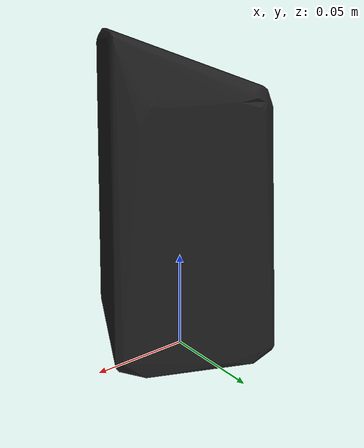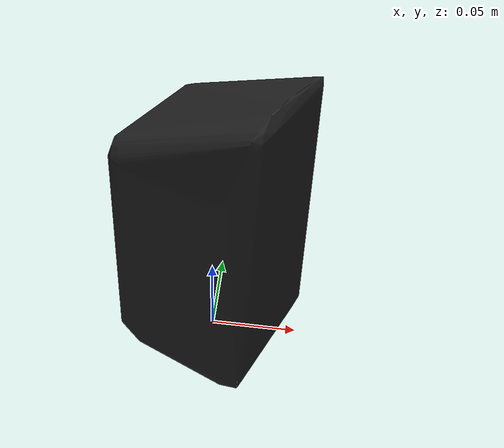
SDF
<?xml version='1.0'?>
<sdf version="1.4">
  <model name="zilla_night_black_heat">
    <static>false</static>
    <link name="link">
      <inertial>
        <pose>0.0008250206356628774 0.0003544991232443884 0.07519274598640509 -0.0785102185419288 0.008223136189412747 -1.8344681116226635</pose>
        <mass>0.08225231795634502</mass>
        <inertia>
          <ixx>0.0001824562239091253</ixx>
          <ixy>1.3487541594776243e-20</ixy>
          <ixz>-3.96326951410202e-20</ixz>
          <iyy>0.00017896905148977388</iyy>
          <iyz>2.1248704655422567e-22</iyz>
          <izz>7.705838384964179e-05</izz>
        </inertia>
      </inertial>
      <collision name="collision">
        <geometry>
          <mesh>
            <!-- Use a downsampled mesh for collisions -->
            <uri>model:///zilla_night_black_heat/zilla_night_black_heat_250_collision.obj</uri>
	        </mesh>
        </geometry>
        <surface>
      </surface>
      </collision>
      <visual name="visual">
        <geometry>
          <mesh>
            <uri>model:///zilla_night_black_heat/optimized_tsdf_texture_mapped_mesh.obj</uri>
	        </mesh>
        </geometry>
        <material>
          <script>
            <uri>model:///zilla_night_black_heat/zilla_night_black_heat.material</uri>
            <name>zilla_night_black_heat</name>
          </script>
        </material>
      </visual>
    </link>
  </model>
</sdf>
